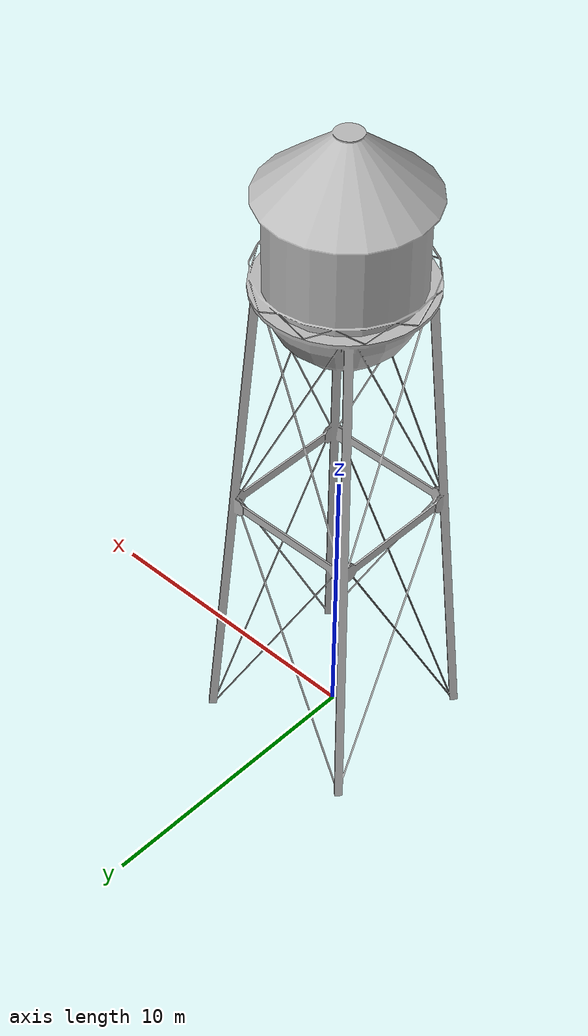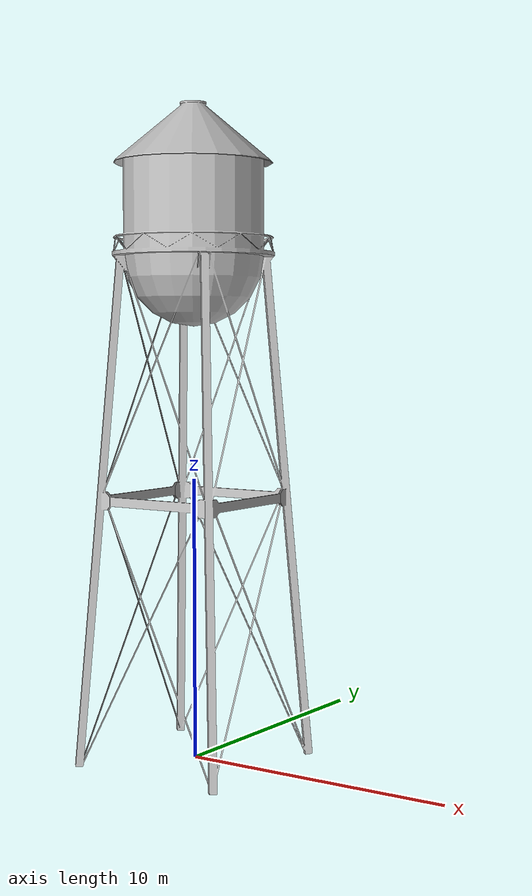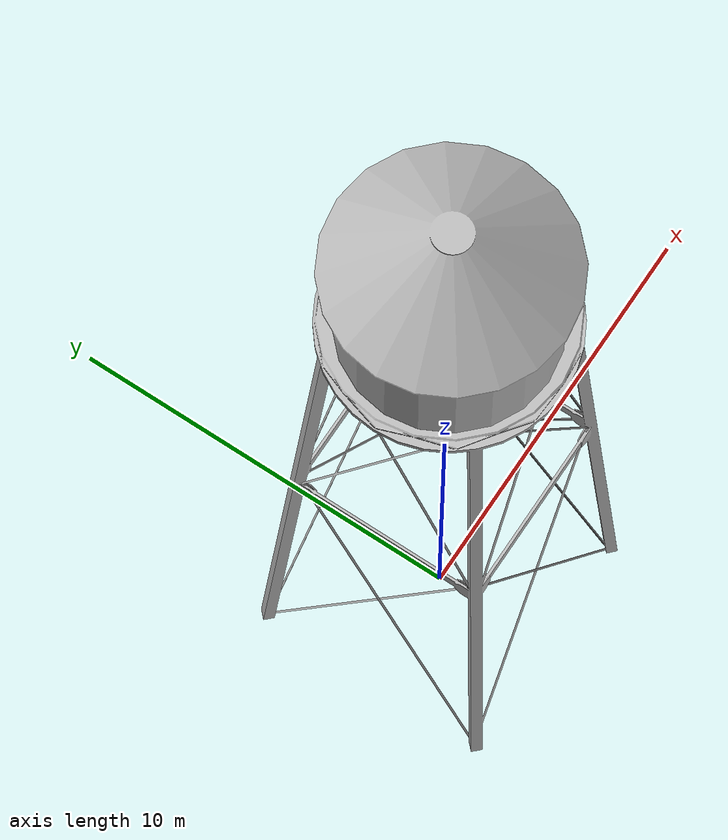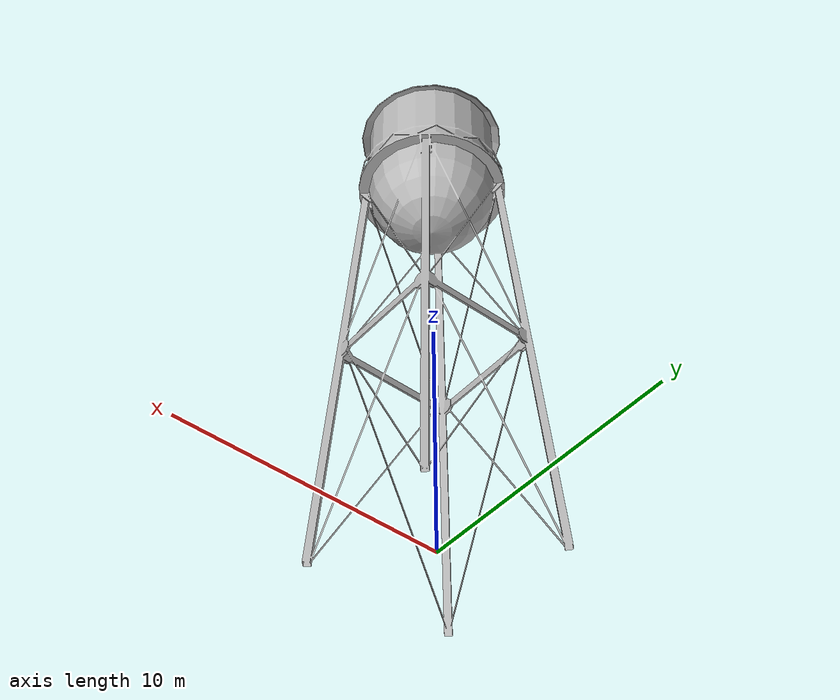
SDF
<?xml version="1.0" ?>
<sdf version="1.6">
  <model name="water_tower">
    <static>true</static>
    <link name="link">
      <collision name="collision">
        <geometry>
          <mesh>
            <uri>model://water_tower/meshes/water_tower.dae</uri>
          </mesh>
        </geometry>
      </collision>
      <visual name="visual">
        <geometry>
          <mesh>
            <uri>model://water_tower/meshes/water_tower.dae</uri>
          </mesh>
        </geometry>
      </visual>
    </link>
  </model>
</sdf>
